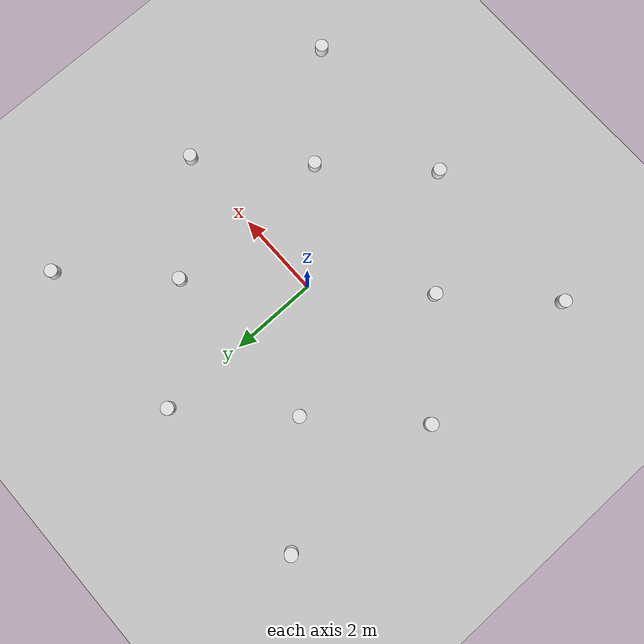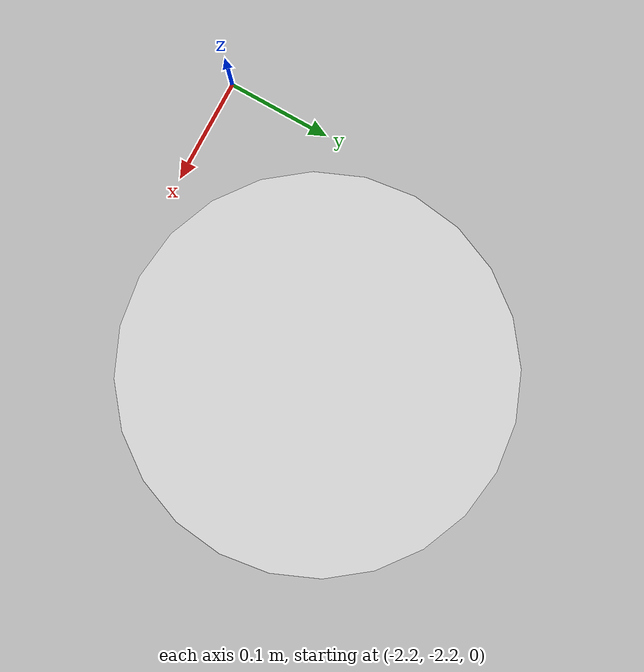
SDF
<sdf version='1.4'>
  <world name='default'>
    <!-- A global light source -->
    <include>
      <uri>model://sun</uri>
    </include>

    <!-- A ground plane -->
    <include>
      <uri>model://ground_plane</uri>
    </include>

    <physics type="ode">
      <real_time_update_rate>5000.0</real_time_update_rate>
      <max_step_size>0.002</max_step_size>
      <real_time_factor>10</real_time_factor>
      <ode>
        <solver>
          <type>quick</type>
          <iters>400</iters>
          <precon_iters>0</precon_iters>
          <sor>1.400000</sor>
          <use_dynamic_moi_rescaling>1</use_dynamic_moi_rescaling>
        </solver>
        <constraints>
          <cfm>0.00001</cfm>
          <erp>0.2</erp>
          <contact_max_correcting_vel>2000.000000</contact_max_correcting_vel>
          <contact_surface_layer>0.01000</contact_surface_layer>
        </constraints>
      </ode>
    </physics>

    <model name='obstacles_1'>
      <pose frame=''>2 2 0 0 -0 0</pose>
      <link name='obstacles_1'>
        <collision name='obstacle_1'>
          <pose>0 0 0 0 0 0</pose>
          <geometry>
            <cylinder>
              <radius>0.15</radius>
              <length>0.5</length>
            </cylinder>
          </geometry>
          <max_contacts>10</max_contacts>
          <surface>
            <bounce/>
            <friction>
              <ode/>
            </friction>
            <contact>
              <ode/>
            </contact>
          </surface>
        </collision>

        <visual name='obstacle_1'>
          <pose>0 0 0 0 0 0</pose>
          <geometry>
            <cylinder>
              <radius>0.15</radius>
              <length>0.5</length>
            </cylinder>
          </geometry>
          <material>
            <script>
              <uri>file://media/materials/scripts/gazebo.material</uri>
              <name>Gazebo/White</name>
            </script>
          </material>
        </visual>

      </link>
    </model>

    <model name='obstacles_2'>
      <pose frame=''>2 -2 0 0 -0 0</pose>
      <link name='obstacles_2'>
        <collision name='obstacle_2'>
          <pose>0 0 0 0 0 0</pose>
          <geometry>
            <cylinder>
              <radius>0.15</radius>
              <length>0.5</length>
            </cylinder>
          </geometry>
          <max_contacts>10</max_contacts>
          <surface>
            <bounce/>
            <friction>
              <ode/>
            </friction>
            <contact>
              <ode/>
            </contact>
          </surface>
        </collision>

        <visual name='obstacle_2'>
          <pose>0 0 0 0 0 0</pose>
          <geometry>
            <cylinder>
              <radius>0.15</radius>
              <length>0.5</length>
            </cylinder>
          </geometry>
          <material>
            <script>
              <uri>file://media/materials/scripts/gazebo.material</uri>
              <name>Gazebo/White</name>
            </script>
          </material>
        </visual>

      </link>
    </model>

    <model name='obstacles_3'>
      <pose frame=''>-2 -2 0 0 -0 0</pose>
      <link name='obstacles_3'>
        <collision name='obstacle_3'>
          <pose>0 0 0 0 0 0</pose>
          <geometry>
            <cylinder>
              <radius>0.15</radius>
              <length>0.5</length>
            </cylinder>
          </geometry>
          <max_contacts>10</max_contacts>
          <surface>
            <bounce/>
            <friction>
              <ode/>
            </friction>
            <contact>
              <ode/>
            </contact>
          </surface>
        </collision>

        <visual name='obstacle_3'>
          <pose>0 0 0 0 0 0</pose>
          <geometry>
            <cylinder>
              <radius>0.15</radius>
              <length>0.5</length>
            </cylinder>
          </geometry>
          <material>
            <script>
              <uri>file://media/materials/scripts/gazebo.material</uri>
              <name>Gazebo/White</name>
            </script>
          </material>
        </visual>

      </link>
    </model>

    <model name='obstacles_4'>
      <pose frame=''>-2 2 0 0 -0 0</pose>
      <link name='obstacles_1'>
        <collision name='obstacle_4'>
          <pose>0 0 0 0 0 0</pose>
          <geometry>
            <cylinder>
              <radius>0.15</radius>
              <length>0.5</length>
            </cylinder>
          </geometry>
          <max_contacts>10</max_contacts>
          <surface>
            <bounce/>
            <friction>
              <ode/>
            </friction>
            <contact>
              <ode/>
            </contact>
          </surface>
        </collision>

        <visual name='obstacle_4'>
          <pose>0 0 0 0 0 0</pose>
          <geometry>
            <cylinder>
              <radius>0.15</radius>
              <length>0.5</length>
            </cylinder>
          </geometry>
          <material>
            <script>
              <uri>file://media/materials/scripts/gazebo.material</uri>
              <name>Gazebo/White</name>
            </script>
          </material>
        </visual>

      </link>
    </model>

    <model name='obstacles_5'>
      <pose frame=''>4 4 0 0 -0 0</pose>
      <link name='obstacles_5'>
        <collision name='obstacle_5'>
          <pose>0 0 0 0 0 0</pose>
          <geometry>
            <cylinder>
              <radius>0.15</radius>
              <length>0.5</length>
            </cylinder>
          </geometry>
          <max_contacts>10</max_contacts>
          <surface>
            <bounce/>
            <friction>
              <ode/>
            </friction>
            <contact>
              <ode/>
            </contact>
          </surface>
        </collision>

        <visual name='obstacle_5'>
          <pose>0 0 0 0 0 0</pose>
          <geometry>
            <cylinder>
              <radius>0.15</radius>
              <length>0.5</length>
            </cylinder>
          </geometry>
          <material>
            <script>
              <uri>file://media/materials/scripts/gazebo.material</uri>
              <name>Gazebo/White</name>
            </script>
          </material>
        </visual>

      </link>
    </model>

    <model name='obstacles_6'>
      <pose frame=''>4 0 0 0 -0 0</pose>
      <link name='obstacles_6'>
        <collision name='obstacle_6'>
          <pose>0 0 0 0 0 0</pose>
          <geometry>
            <cylinder>
              <radius>0.15</radius>
              <length>0.5</length>
            </cylinder>
          </geometry>
          <max_contacts>10</max_contacts>
          <surface>
            <bounce/>
            <friction>
              <ode/>
            </friction>
            <contact>
              <ode/>
            </contact>
          </surface>
        </collision>

        <visual name='obstacle_6'>
          <pose>0 0 0 0 0 0</pose>
          <geometry>
            <cylinder>
              <radius>0.15</radius>
              <length>0.5</length>
            </cylinder>
          </geometry>
          <material>
            <script>
              <uri>file://media/materials/scripts/gazebo.material</uri>
              <name>Gazebo/White</name>
            </script>
          </material>
        </visual>

      </link>
    </model>

    <model name='obstacles_7'>
      <pose frame=''>4 -4 0 0 -0 0</pose>
      <link name='obstacles_7'>
        <collision name='obstacle_7'>
          <pose>0 0 0 0 0 0</pose>
          <geometry>
            <cylinder>
              <radius>0.15</radius>
              <length>0.5</length>
            </cylinder>
          </geometry>
          <max_contacts>10</max_contacts>
          <surface>
            <bounce/>
            <friction>
              <ode/>
            </friction>
            <contact>
              <ode/>
            </contact>
          </surface>
        </collision>

        <visual name='obstacle_7'>
          <pose>0 0 0 0 0 0</pose>
          <geometry>
            <cylinder>
              <radius>0.15</radius>
              <length>0.5</length>
            </cylinder>
          </geometry>
          <material>
            <script>
              <uri>file://media/materials/scripts/gazebo.material</uri>
              <name>Gazebo/White</name>
            </script>
          </material>
        </visual>

      </link>
    </model>

    <model name='obstacles_8'>
      <pose frame=''>0 -4 0 0 -0 0</pose>
      <link name='obstacles_8'>
        <collision name='obstacle_8'>
          <pose>0 0 0 0 0 0</pose>
          <geometry>
            <cylinder>
              <radius>0.15</radius>
              <length>0.5</length>
            </cylinder>
          </geometry>
          <max_contacts>10</max_contacts>
          <surface>
            <bounce/>
            <friction>
              <ode/>
            </friction>
            <contact>
              <ode/>
            </contact>
          </surface>
        </collision>

        <visual name='obstacle_8'>
          <pose>0 0 0 0 0 0</pose>
          <geometry>
            <cylinder>
              <radius>0.15</radius>
              <length>0.5</length>
            </cylinder>
          </geometry>
          <material>
            <script>
              <uri>file://media/materials/scripts/gazebo.material</uri>
              <name>Gazebo/White</name>
            </script>
          </material>
        </visual>

      </link>
    </model>

    <model name='obstacles_9'>
      <pose frame=''>-4 -4 0 0 -0 0</pose>
      <link name='obstacles_9'>
        <collision name='obstacle_9'>
          <pose>0 0 0 0 0 0</pose>
          <geometry>
            <cylinder>
              <radius>0.15</radius>
              <length>0.5</length>
            </cylinder>
          </geometry>
          <max_contacts>10</max_contacts>
          <surface>
            <bounce/>
            <friction>
              <ode/>
            </friction>
            <contact>
              <ode/>
            </contact>
          </surface>
        </collision>

        <visual name='obstacle_9'>
          <pose>0 0 0 0 0 0</pose>
          <geometry>
            <cylinder>
              <radius>0.15</radius>
              <length>0.5</length>
            </cylinder>
          </geometry>
          <material>
            <script>
              <uri>file://media/materials/scripts/gazebo.material</uri>
              <name>Gazebo/White</name>
            </script>
          </material>
        </visual>

      </link>
    </model>

    <model name='obstacles_10'>
      <pose frame=''>-4 0 0 0 -0 0</pose>
      <link name='obstacles_10'>
        <collision name='obstacle_10'>
          <pose>0 0 0 0 0 0</pose>
          <geometry>
            <cylinder>
              <radius>0.15</radius>
              <length>0.5</length>
            </cylinder>
          </geometry>
          <max_contacts>10</max_contacts>
          <surface>
            <bounce/>
            <friction>
              <ode/>
            </friction>
            <contact>
              <ode/>
            </contact>
          </surface>
        </collision>

        <visual name='obstacle_10'>
          <pose>0 0 0 0 0 0</pose>
          <geometry>
            <cylinder>
              <radius>0.15</radius>
              <length>0.5</length>
            </cylinder>
          </geometry>
          <material>
            <script>
              <uri>file://media/materials/scripts/gazebo.material</uri>
              <name>Gazebo/White</name>
            </script>
          </material>
        </visual>

      </link>
    </model>

    <model name='obstacles_11'>
      <pose frame=''>-4 4 0 0 -0 0</pose>
      <link name='obstacles_11'>
        <collision name='obstacle_11'>
          <pose>0 0 0 0 0 0</pose>
          <geometry>
            <cylinder>
              <radius>0.15</radius>
              <length>0.5</length>
            </cylinder>
          </geometry>
          <max_contacts>10</max_contacts>
          <surface>
            <bounce/>
            <friction>
              <ode/>
            </friction>
            <contact>
              <ode/>
            </contact>
          </surface>
        </collision>

        <visual name='obstacle_11'>
          <pose>0 0 0 0 0 0</pose>
          <geometry>
            <cylinder>
              <radius>0.15</radius>
              <length>0.5</length>
            </cylinder>
          </geometry>
          <material>
            <script>
              <uri>file://media/materials/scripts/gazebo.material</uri>
              <name>Gazebo/White</name>
            </script>
          </material>
        </visual>

      </link>
    </model>

    <model name='obstacles_12'>
      <pose frame=''>0 4 0 0 -0 0</pose>
      <link name='obstacles_12'>
        <collision name='obstacle_12'>
          <pose>0 0 0 0 0 0</pose>
          <geometry>
            <cylinder>
              <radius>0.15</radius>
              <length>0.5</length>
            </cylinder>
          </geometry>
          <max_contacts>10</max_contacts>
          <surface>
            <bounce/>
            <friction>
              <ode/>
            </friction>
            <contact>
              <ode/>
            </contact>
          </surface>
        </collision>

        <visual name='obstacle_12'>
          <pose>0 0 0 0 0 0</pose>
          <geometry>
            <cylinder>
              <radius>0.15</radius>
              <length>0.5</length>
            </cylinder>
          </geometry>
          <material>
            <script>
              <uri>file://media/materials/scripts/gazebo.material</uri>
              <name>Gazebo/White</name>
            </script>
          </material>
        </visual>

      </link>
    </model>

    <scene>
      <ambient>0.4 0.4 0.4 1</ambient>
      <background>0.7 0.7 0.7 1</background>
      <shadows>true</shadows>
    </scene>

    <gui fullscreen='0'>
      <camera name='user_camera'>
        <pose>0.0 0.0 17.0 0 1.5708 0</pose>
        <view_controller>orbit</view_controller>
      </camera>
    </gui>
  </world>
</sdf>
